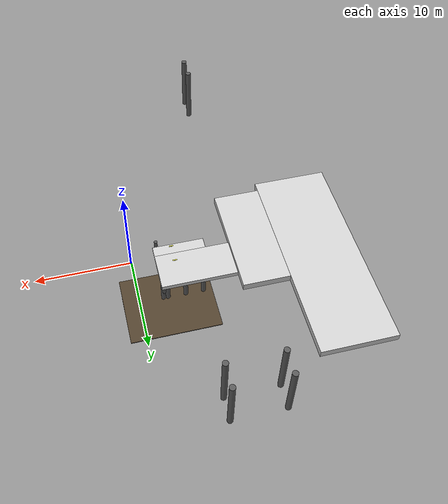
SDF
<sdf version="1.10">
 <world name="harbor">
  <model name="wall_south_boundary">
   <pose>-19.500000 4.000000 0.550000 0.000000 0.000000 0.000000</pose>
   <static>true</static>
   <link name="link">
    <collision name="collision">
     <geometry><box><size>8.000000 22.000000 0.800000</size></box></geometry>
    </collision>
    <visual name="visual">
     <geometry><box><size>8.000000 22.000000 0.800000</size></box></geometry>
     <material><ambient>0.72 0.72 0.72 1</ambient><diffuse>0.82 0.82 0.82 1</diffuse></material>
    </visual>
   </link>
  </model>
  <model name="dock_main_platform">
   <pose>-6.500000 2.000000 0.200000 0.000000 0.000000 0.000000</pose>
   <static>true</static>
   <link name="link">
    <collision name="collision">
     <geometry><box><size>8.000000 4.000000 0.500000</size></box></geometry>
    </collision>
    <visual name="visual">
     <geometry><box><size>8.000000 4.000000 0.500000</size></box></geometry>
     <material><ambient>0.72 0.72 0.72 1</ambient><diffuse>0.82 0.82 0.82 1</diffuse></material>
    </visual>
   </link>
  </model>
  <model name="launch_shore_apron">
   <pose>-15.500000 0.000000 0.550000 0.000000 0.000000 0.000000</pose>
   <static>true</static>
   <link name="link">
    <collision name="collision">
     <geometry><box><size>10.000000 12.000000 0.800000</size></box></geometry>
    </collision>
    <visual name="visual">
     <geometry><box><size>10.000000 12.000000 0.800000</size></box></geometry>
     <material><ambient>0.72 0.72 0.72 1</ambient><diffuse>0.82 0.82 0.82 1</diffuse></material>
    </visual>
   </link>
  </model>
  <model name="floating_launch_dock">
   <pose>-5.250000 0.000000 0.250000 0.000000 0.000000 0.000000</pose>
   <static>true</static>
   <link name="link">
    <collision name="collision">
     <geometry><box><size>5.500000 2.400000 0.350000</size></box></geometry>
    </collision>
    <visual name="visual">
     <geometry><box><size>5.500000 2.400000 0.350000</size></box></geometry>
     <material><ambient>0.72 0.72 0.72 1</ambient><diffuse>0.82 0.82 0.82 1</diffuse></material>
    </visual>
   </link>
  </model>
  <model name="launch_guide_post_north">
   <pose>-3.000000 2.000000 -1.600000 0.000000 0.000000 0.000000</pose>
   <static>true</static>
   <link name="link">
    <collision name="collision">
     <geometry><cylinder><radius>0.180000</radius><length>3.800000</length></cylinder></geometry>
    </collision>
    <visual name="visual">
     <geometry><cylinder><radius>0.180000</radius><length>3.800000</length></cylinder></geometry>
     <material><ambient>0.25 0.25 0.25 1</ambient><diffuse>0.35 0.35 0.35 1</diffuse></material>
    </visual>
   </link>
  </model>
  <model name="launch_guide_post_south">
   <pose>-3.000000 -2.000000 -1.600000 0.000000 0.000000 0.000000</pose>
   <static>true</static>
   <link name="link">
    <collision name="collision">
     <geometry><cylinder><radius>0.180000</radius><length>3.800000</length></cylinder></geometry>
    </collision>
    <visual name="visual">
     <geometry><cylinder><radius>0.180000</radius><length>3.800000</length></cylinder></geometry>
     <material><ambient>0.25 0.25 0.25 1</ambient><diffuse>0.35 0.35 0.35 1</diffuse></material>
    </visual>
   </link>
  </model>
  <model name="launch_cleat_north">
   <pose>-4.500000 0.950000 0.420000 0.000000 0.000000 0.000000</pose>
   <static>true</static>
   <link name="link">
    <collision name="collision">
     <geometry><box><size>0.450000 0.120000 0.120000</size></box></geometry>
    </collision>
    <visual name="visual">
     <geometry><box><size>0.450000 0.120000 0.120000</size></box></geometry>
     <material><ambient>0.7 0.7 0.2 1</ambient><diffuse>0.9 0.9 0.3 1</diffuse></material>
    </visual>
   </link>
  </model>
  <model name="launch_cleat_south">
   <pose>-4.500000 -0.950000 0.420000 0.000000 0.000000 0.000000</pose>
   <static>true</static>
   <link name="link">
    <collision name="collision">
     <geometry><box><size>0.450000 0.120000 0.120000</size></box></geometry>
    </collision>
    <visual name="visual">
     <geometry><box><size>0.450000 0.120000 0.120000</size></box></geometry>
     <material><ambient>0.7 0.7 0.2 1</ambient><diffuse>0.9 0.9 0.3 1</diffuse></material>
    </visual>
   </link>
  </model>
  <model name="north_wharf_pile_xm36_water">
   <pose>-12.500000 14.000000 -2.600000 0.000000 0.000000 0.000000</pose>
   <static>true</static>
   <link name="link">
    <collision name="collision">
     <geometry><cylinder><radius>0.320000</radius><length>7.200000</length></cylinder></geometry>
    </collision>
    <visual name="visual">
     <geometry><cylinder><radius>0.320000</radius><length>7.200000</length></cylinder></geometry>
     <material><ambient>0.25 0.25 0.25 1</ambient><diffuse>0.35 0.35 0.35 1</diffuse></material>
    </visual>
   </link>
  </model>
  <model name="north_wharf_pile_xm36_apron">
   <pose>-12.500000 16.500000 -2.600000 0.000000 0.000000 0.000000</pose>
   <static>true</static>
   <link name="link">
    <collision name="collision">
     <geometry><cylinder><radius>0.320000</radius><length>7.200000</length></cylinder></geometry>
    </collision>
    <visual name="visual">
     <geometry><cylinder><radius>0.320000</radius><length>7.200000</length></cylinder></geometry>
     <material><ambient>0.25 0.25 0.25 1</ambient><diffuse>0.35 0.35 0.35 1</diffuse></material>
    </visual>
   </link>
  </model>
  <model name="north_wharf_pile_xm30_water">
   <pose>-6.500000 14.000000 -2.600000 0.000000 0.000000 0.000000</pose>
   <static>true</static>
   <link name="link">
    <collision name="collision">
     <geometry><cylinder><radius>0.320000</radius><length>7.200000</length></cylinder></geometry>
    </collision>
    <visual name="visual">
     <geometry><cylinder><radius>0.320000</radius><length>7.200000</length></cylinder></geometry>
     <material><ambient>0.25 0.25 0.25 1</ambient><diffuse>0.35 0.35 0.35 1</diffuse></material>
    </visual>
   </link>
  </model>
  <model name="north_wharf_pile_xm30_apron">
   <pose>-6.500000 16.500000 -2.600000 0.000000 0.000000 0.000000</pose>
   <static>true</static>
   <link name="link">
    <collision name="collision">
     <geometry><cylinder><radius>0.320000</radius><length>7.200000</length></cylinder></geometry>
    </collision>
    <visual name="visual">
     <geometry><cylinder><radius>0.320000</radius><length>7.200000</length></cylinder></geometry>
     <material><ambient>0.25 0.25 0.25 1</ambient><diffuse>0.35 0.35 0.35 1</diffuse></material>
    </visual>
   </link>
  </model>
  <model name="south_wharf_pile_xm36_water">
   <pose>-12.500000 -28.000000 -2.600000 0.000000 0.000000 0.000000</pose>
   <static>true</static>
   <link name="link">
    <collision name="collision">
     <geometry><cylinder><radius>0.320000</radius><length>7.200000</length></cylinder></geometry>
    </collision>
    <visual name="visual">
     <geometry><cylinder><radius>0.320000</radius><length>7.200000</length></cylinder></geometry>
     <material><ambient>0.25 0.25 0.25 1</ambient><diffuse>0.35 0.35 0.35 1</diffuse></material>
    </visual>
   </link>
  </model>
  <model name="south_wharf_pile_xm36_apron">
   <pose>-12.500000 -30.500000 -2.600000 0.000000 0.000000 0.000000</pose>
   <static>true</static>
   <link name="link">
    <collision name="collision">
     <geometry><cylinder><radius>0.320000</radius><length>7.200000</length></cylinder></geometry>
    </collision>
    <visual name="visual">
     <geometry><cylinder><radius>0.320000</radius><length>7.200000</length></cylinder></geometry>
     <material><ambient>0.25 0.25 0.25 1</ambient><diffuse>0.35 0.35 0.35 1</diffuse></material>
    </visual>
   </link>
  </model>
  <model name="floating_dock_piling_00_north">
   <pose>-7.500000 1.200000 -3.050000 0.000000 0.000000 0.000000</pose>
   <static>true</static>
   <link name="link">
    <collision name="collision">
     <geometry><cylinder><radius>0.250000</radius><length>6.300000</length></cylinder></geometry>
    </collision>
    <visual name="visual">
     <geometry><cylinder><radius>0.250000</radius><length>6.300000</length></cylinder></geometry>
     <material><ambient>0.25 0.25 0.25 1</ambient><diffuse>0.35 0.35 0.35 1</diffuse></material>
    </visual>
   </link>
  </model>
  <model name="floating_dock_piling_00_south">
   <pose>-7.500000 -1.200000 -3.050000 0.000000 0.000000 0.000000</pose>
   <static>true</static>
   <link name="link">
    <collision name="collision">
     <geometry><cylinder><radius>0.250000</radius><length>6.300000</length></cylinder></geometry>
    </collision>
    <visual name="visual">
     <geometry><cylinder><radius>0.250000</radius><length>6.300000</length></cylinder></geometry>
     <material><ambient>0.25 0.25 0.25 1</ambient><diffuse>0.35 0.35 0.35 1</diffuse></material>
    </visual>
   </link>
  </model>
  <model name="floating_dock_piling_01_north">
   <pose>-5.500000 1.200000 -3.050000 0.000000 0.000000 0.000000</pose>
   <static>true</static>
   <link name="link">
    <collision name="collision">
     <geometry><cylinder><radius>0.250000</radius><length>6.300000</length></cylinder></geometry>
    </collision>
    <visual name="visual">
     <geometry><cylinder><radius>0.250000</radius><length>6.300000</length></cylinder></geometry>
     <material><ambient>0.25 0.25 0.25 1</ambient><diffuse>0.35 0.35 0.35 1</diffuse></material>
    </visual>
   </link>
  </model>
  <model name="floating_dock_piling_01_south">
   <pose>-5.500000 -1.200000 -3.050000 0.000000 0.000000 0.000000</pose>
   <static>true</static>
   <link name="link">
    <collision name="collision">
     <geometry><cylinder><radius>0.250000</radius><length>6.300000</length></cylinder></geometry>
    </collision>
    <visual name="visual">
     <geometry><cylinder><radius>0.250000</radius><length>6.300000</length></cylinder></geometry>
     <material><ambient>0.25 0.25 0.25 1</ambient><diffuse>0.35 0.35 0.35 1</diffuse></material>
    </visual>
   </link>
  </model>
  <model name="floating_dock_piling_02_north">
   <pose>-3.500000 1.200000 -3.050000 0.000000 0.000000 0.000000</pose>
   <static>true</static>
   <link name="link">
    <collision name="collision">
     <geometry><cylinder><radius>0.250000</radius><length>6.300000</length></cylinder></geometry>
    </collision>
    <visual name="visual">
     <geometry><cylinder><radius>0.250000</radius><length>6.300000</length></cylinder></geometry>
     <material><ambient>0.25 0.25 0.25 1</ambient><diffuse>0.35 0.35 0.35 1</diffuse></material>
    </visual>
   </link>
  </model>
  <model name="floating_dock_piling_02_south">
   <pose>-3.500000 -1.200000 -3.050000 0.000000 0.000000 0.000000</pose>
   <static>true</static>
   <link name="link">
    <collision name="collision">
     <geometry><cylinder><radius>0.250000</radius><length>6.300000</length></cylinder></geometry>
    </collision>
    <visual name="visual">
     <geometry><cylinder><radius>0.250000</radius><length>6.300000</length></cylinder></geometry>
     <material><ambient>0.25 0.25 0.25 1</ambient><diffuse>0.35 0.35 0.35 1</diffuse></material>
    </visual>
   </link>
  </model>
  <model name="floating_dock_piling_03_north">
   <pose>-3.000000 1.200000 -3.050000 0.000000 0.000000 0.000000</pose>
   <static>true</static>
   <link name="link">
    <collision name="collision">
     <geometry><cylinder><radius>0.250000</radius><length>6.300000</length></cylinder></geometry>
    </collision>
    <visual name="visual">
     <geometry><cylinder><radius>0.250000</radius><length>6.300000</length></cylinder></geometry>
     <material><ambient>0.25 0.25 0.25 1</ambient><diffuse>0.35 0.35 0.35 1</diffuse></material>
    </visual>
   </link>
  </model>
  <model name="launch_scour_depression">
   <pose>-3.500000 2.000000 -5.800000 0.000000 0.000000 0.000000</pose>
   <static>true</static>
   <link name="link">
    <collision name="collision">
     <geometry><box><size>10.000000 8.000000 0.100000</size></box></geometry>
    </collision>
    <visual name="visual">
     <geometry><box><size>10.000000 8.000000 0.100000</size></box></geometry>
     <material><ambient>0.22 0.18 0.12 1</ambient><diffuse>0.32 0.26 0.18 1</diffuse></material>
    </visual>
   </link>
  </model>
 </world>
</sdf>
